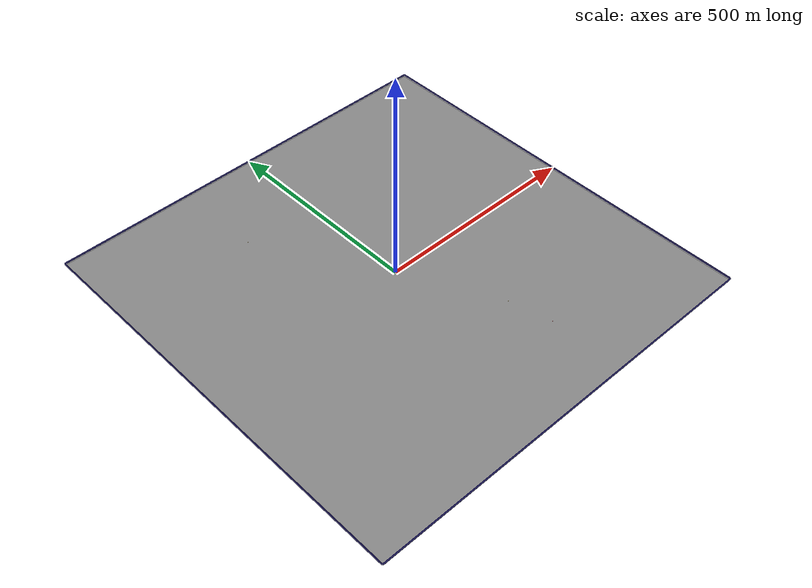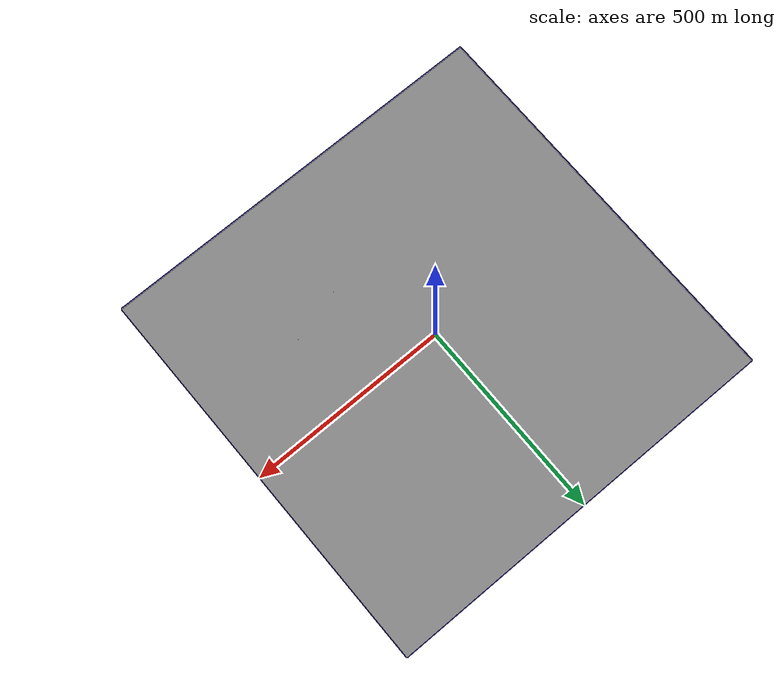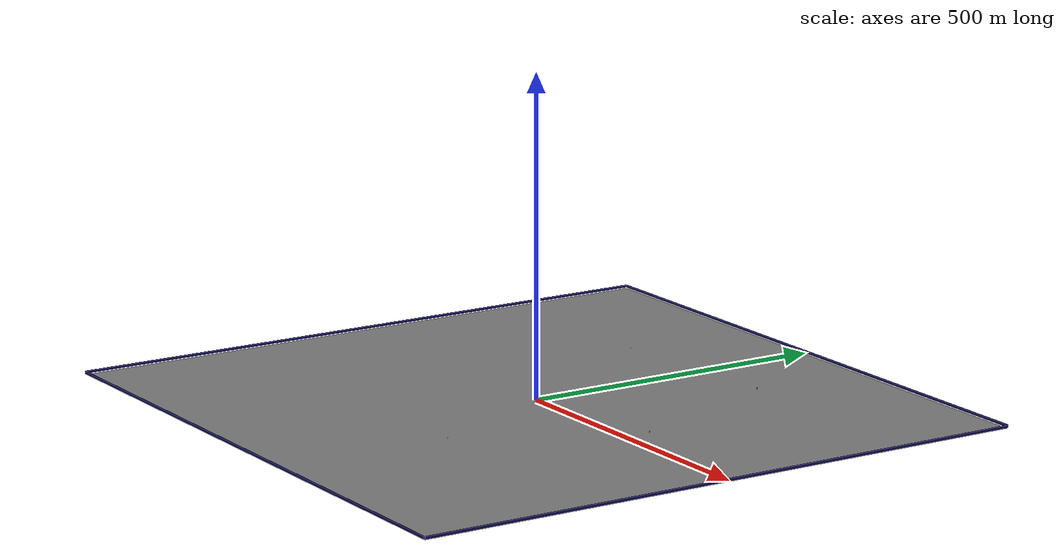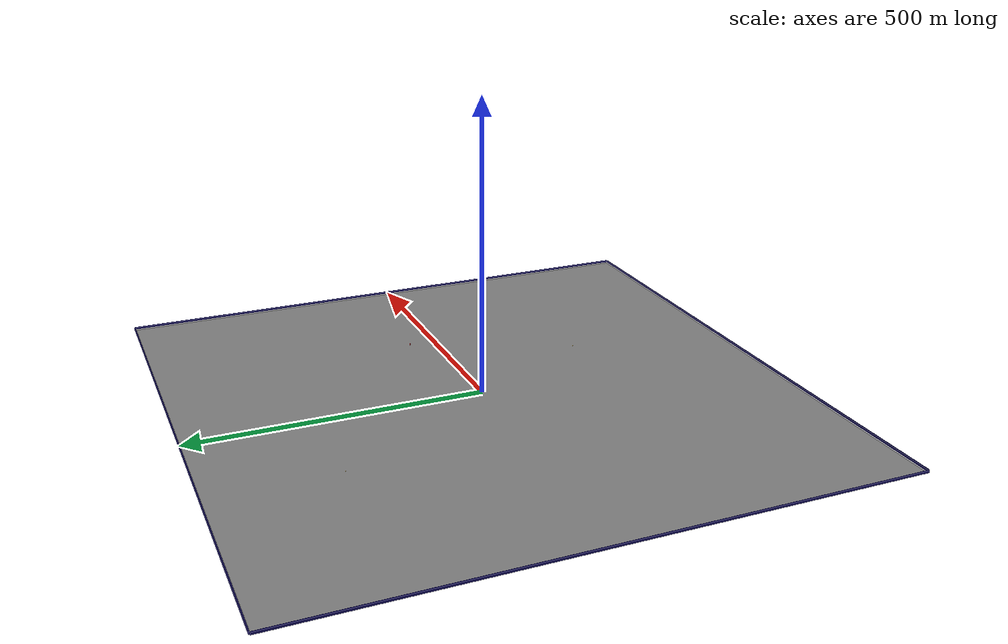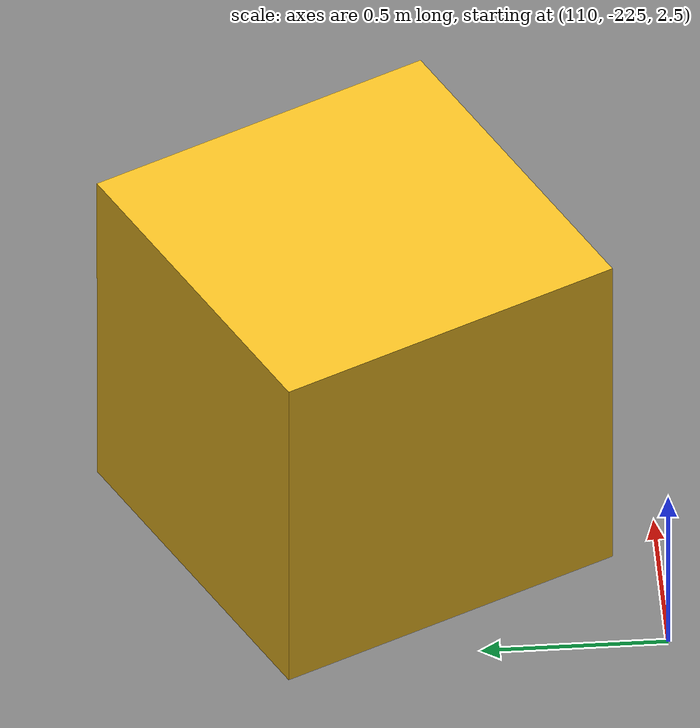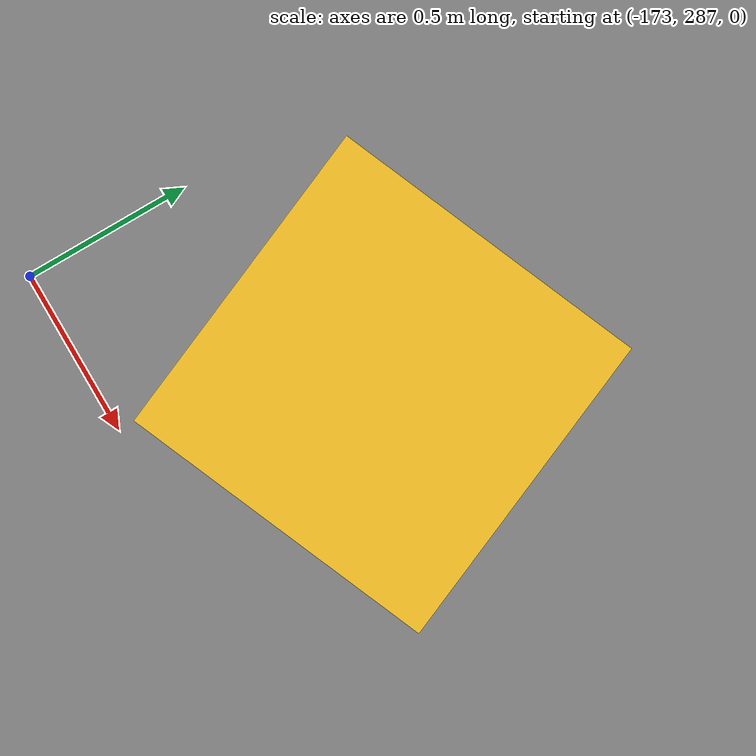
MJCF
<mujoco model="unnamed_model">
  <default>
    <default class="/" />
    <default class="border/" />
    <default class="border_1/" />
    <default class="border_2/" />
    <default class="border_3/" />
    <default class="agentplaceholder/" />
    <default class="placeholder_box/" />
    <default class="tree0/" />
    <default class="tree1/" />
    <default class="stone/" />
    <default class="stone_1/" />
  </default>
  <worldbody>
    <body name="border/">
      <body name="border/border" pos="0 501 2">
        <geom name="border/border_geom" class="border/" type="box" size="500 1 2" rgba="0.035000000000000003 0.016 0.28999999999999998 1" />
      </body>
    </body>
    <body name="border_1/">
      <body name="border_1/border" pos="0 -501 2">
        <geom name="border_1/border_geom" class="border_1/" type="box" size="500 1 2" rgba="0.035000000000000003 0.016 0.28999999999999998 1" />
      </body>
    </body>
    <body name="border_2/">
      <body name="border_2/border" pos="501 0 2">
        <geom name="border_2/border_geom" class="border_2/" type="box" size="1 500 2" rgba="0.035000000000000003 0.016 0.28999999999999998 1" />
      </body>
    </body>
    <body name="border_3/">
      <body name="border_3/border" pos="-501 0 2">
        <geom name="border_3/border_geom" class="border_3/" type="box" size="1 500 2" rgba="0.035000000000000003 0.016 0.28999999999999998 1" />
      </body>
    </body>
    <body euler="0 0 116.25433956098129" name="agentplaceholder/">
      <joint name="agentplaceholder/boxagent_freeJoint/" class="/" type="free" />
      <body name="agentplaceholder/agentplaceholder" pos="-250 0 3" euler="0 0 0">
        <geom name="agentplaceholder/boxagent_geom" class="agentplaceholder/" type="box" size="0.5 0.5 0.5" rgba="0.94899999999999995 0.74509999999999998 0.1333 1" euler="0 0 0" />
      </body>
    </body>
    <body name="placeholder_box/">
      <body name="placeholder_box/placeholder_box" pos="-172.2405 287.70640000000003 0.5" euler="0 0 113.28614356828507">
        <geom name="placeholder_box/box_geom" class="placeholder_box/" type="box" size="0.5 0.5 0.5" rgba="0.94899999999999995 0.74509999999999998 0.1333 1" euler="0 0 0" />
      </body>
    </body>
    <body name="tree0/">
      <body name="tree0/tree0" pos="240.97980000000001 -189.25720000000001 0.10000000000000001" euler="0 0 148.57441664928029">
        <geom name="tree0/tree_geom" class="tree0/" type="box" size="0.10000000000000001 0.10000000000000001 2" rgba="1 0 0 1" />
      </body>
    </body>
    <body name="tree1/">
      <body name="tree1/tree1" pos="135.13855000000001 -324.3451 0.10000000000000001" euler="0 0 140.11003411945899">
        <geom name="tree1/tree_geom" class="tree1/" type="box" size="0.10000000000000001 0.10000000000000001 2" rgba="1 0 0 1" />
      </body>
    </body>
    <body name="stone/">
      <body name="stone/stone" pos="235.19579999999999 45.519599999999969 0.10000000000000001" euler="0 0 -61.628554283602355">
        <geom name="stone/stone_geom" class="stone/" type="box" size="0.10000000000000001 0.10000000000000001 2" rgba="1 0 0 1" />
      </body>
    </body>
    <body name="stone_1/">
      <body name="stone_1/stone" pos="127.0919 316.09490000000005 0.10000000000000001" euler="0 0 86.201382458548949">
        <geom name="stone_1/stone_geom" class="stone_1/" type="box" size="0.10000000000000001 0.10000000000000001 2" rgba="1 0 0 1" />
      </body>
    </body>
    <geom name="base_plane" class="/" type="plane" size="500 500 0.10000000000000001" />
  </worldbody>
</mujoco>
